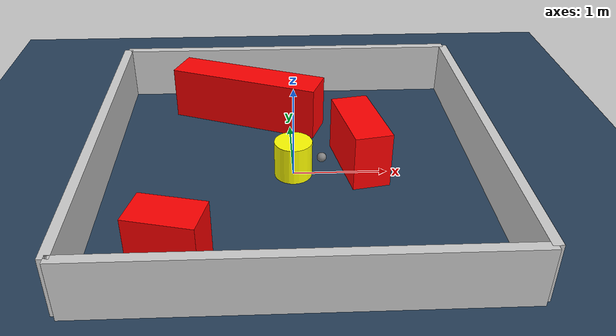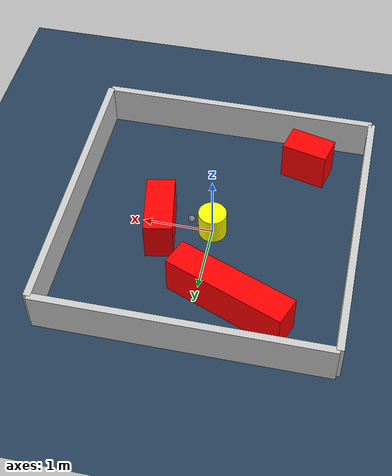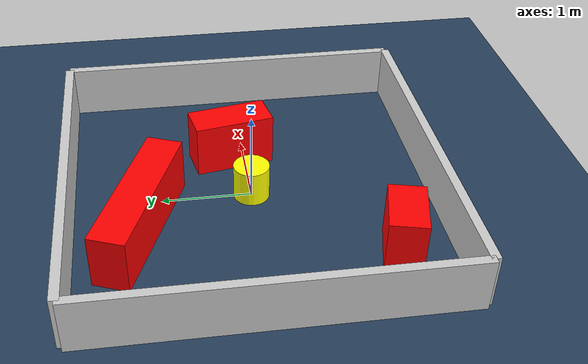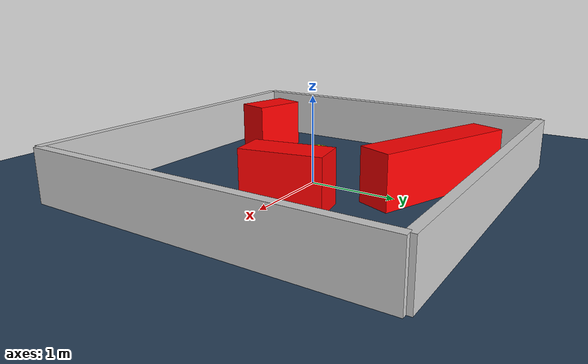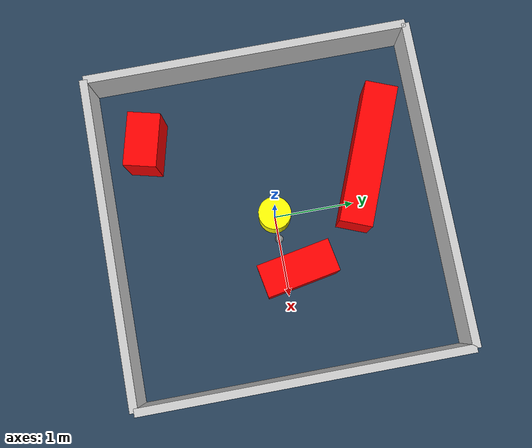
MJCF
<?xml version="1.0" ?>
<mujoco model="generated_environment">
  <option timestep="0.01" integrator="RK4" cone="elliptic"/>
  <default>
    <geom density="1"/>
  </default>
  <asset>
    <texture builtin="gradient" height="3072" rgb1="0.3 0.5 0.7" rgb2="0 0 0" type="skybox" width="512"/>
    <texture builtin="checker" height="300" mark="edge" markrgb="0.8 0.8 0.8" name="groundplane" rgb1="0.2 0.3 0.4" rgb2="0.1 0.2 0.3" type="2d" width="300"/>
    <material name="groundplane" reflectance="0.2" texrepeat="5 5" texture="groundplane" texuniform="true"/>
    <material name="robot" rgba="0.0 1.0 0.0 1"/>
  </asset>
  <worldbody>
    <light dir="0 0 -1" directional="true" pos="0 0 1.5"/>
    <geom condim="4" friction="1.0 0.005 0.001" material="groundplane" name="floor" size="0 0 0.05" type="plane"/>
    <body name="walls">
      <geom name="wall_1" condim="4" pos="-2.0 0.0 0.3" rgba="0.800000011920929 0.800000011920929 0.800000011920929 1.0" size="0.05 2.0 0.3" type="box"/>
      <geom name="wall_2" condim="4" pos="2.0 0.0 0.3" rgba="0.800000011920929 0.800000011920929 0.800000011920929 1.0" size="0.05 2.0 0.3" type="box"/>
      <geom name="wall_3" condim="4" pos="0.0 -2.0 0.3" rgba="0.800000011920929 0.800000011920929 0.800000011920929 1.0" size="2.0 0.05 0.3" type="box"/>
      <geom name="wall_4" condim="4" pos="0.0 2.0 0.3" rgba="0.800000011920929 0.800000011920929 0.800000011920929 1.0" size="2.0 0.05 0.3" type="box"/>
    </body>
    <body name="robot">
      <joint name="joint_x" type="slide" pos="0 0 0" axis="1 0 0"/>
      <joint name="joint_y" type="slide" pos="0 0 0" axis="0 1 0"/>
      <geom name="robot" type="sphere" pos="0.3 0.0 0.2" size="0.05" mass="5." friction="1.0 0.005 0.0001" condim="4" rgba="0.5 0.5 0.5 1.0"/>
      <site name="sensor_ball"/>
    </body>
    <body name="obstacle_movable_1">
      <geom name="obstacle_movable_1" condim="4" pos="0.0 0.0 0.2" euler="0 0 0.0" friction="1.0 0.005 0.001" rgba="1.0 1.0 0.0 1.0" size="0.2 0.2 0.0" type="cylinder" mass="0.1"/>
      <joint type="free"/>
    </body>
    <body name="obstacle_2_static">
      <geom name="obstacle_2_static" condim="4" pos="0.7186924180069534 0.14893143160230338 0.3" euler="0 0 280.54489529403406" friction="1.0 0.005 0.001" rgba="1 0 0 1" size="0.4488927681463389 0.2 0.3" type="box"/>
    </body>
    <body name="obstacle_3_static">
      <geom name="obstacle_3_static" condim="4" pos="-1.1431328406276824 -1.413705577527997 0.3" euler="0 0 346.0987467133051" friction="1.0 0.005 0.001" rgba="1 0 0 1" size="0.3290701990418815 0.2 0.3" type="box"/>
    </body>
    <body name="obstacle_4_static">
      <geom name="obstacle_4_static" condim="4" pos="-0.48183367035572755 1.2390726541356705 0.3" euler="0 0 338.26967966159674" friction="1.0 0.005 0.001" rgba="1 0 0 1" size="0.8746395497879924 0.2 0.3" type="box"/>
    </body>
  </worldbody>
  <actuator>
    <motor name="actuator_x" joint="joint_x" gear="1" ctrlrange="-1 1"/>
    <motor name="actuator_y" joint="joint_y" gear="1" ctrlrange="-1 1"/>
  </actuator>
</mujoco>
